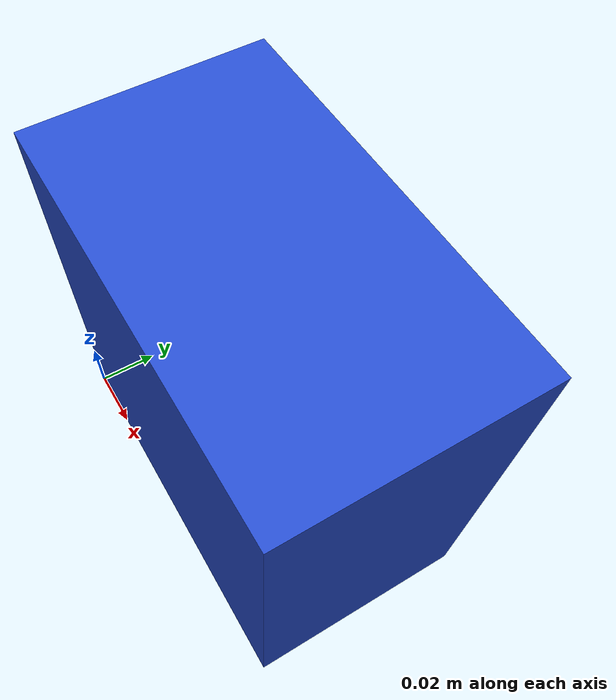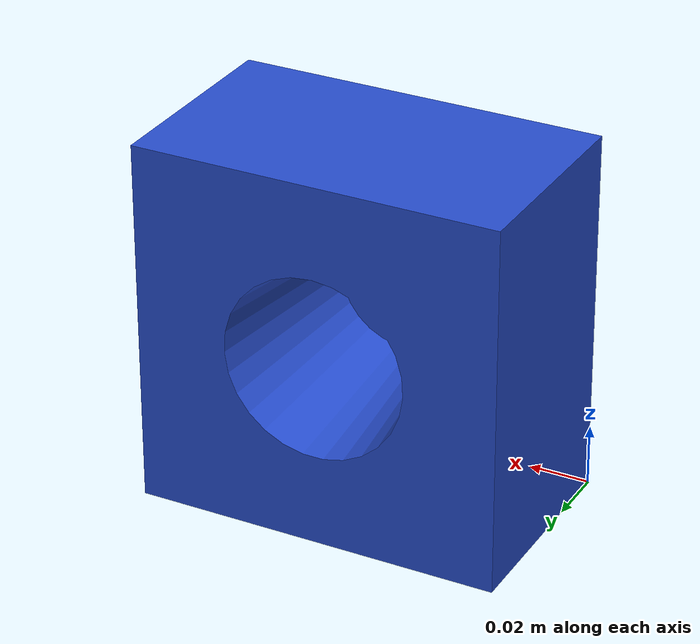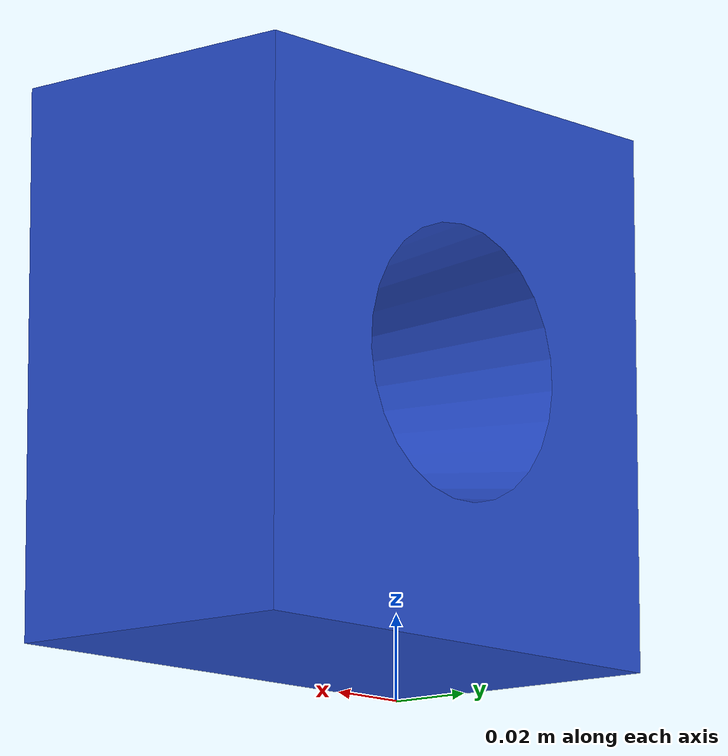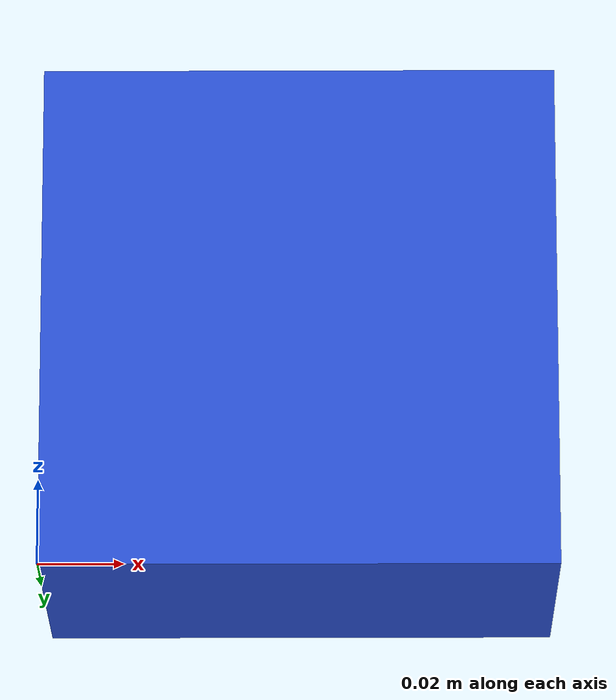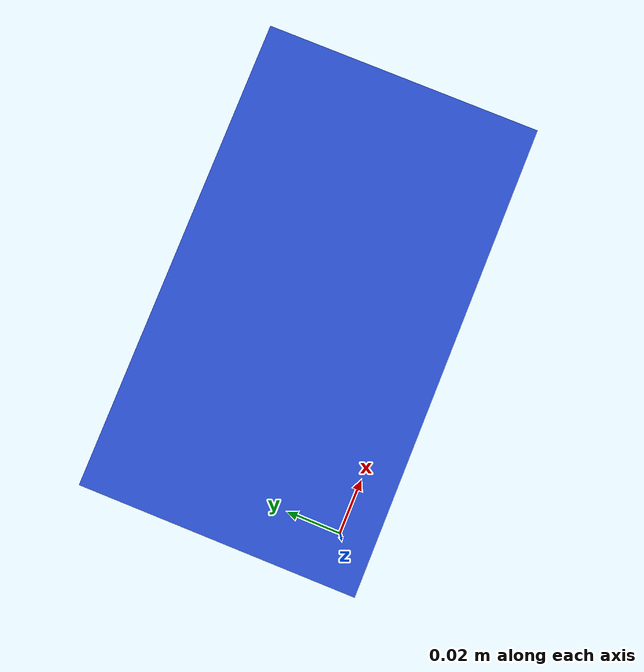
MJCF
<mujoco model="peg">
  <asset>
    <mesh file="meshes/yuanzhukong.STL" name="yuanzhukong_mesh"  scale="0.002 0.002 0.002"/>
    <texture file="../textures/blue-wood.png" name="blue-wood" />
    <material name="bmetal"  reflectance="1.0" shininess="1.0" specular="1.0" texrepeat="1 1" texture="blue-wood" texuniform="true"/>

  </asset>
  <worldbody>
    <body>
      <body name="object">
        <geom pos="0 0 0" mesh="yuanzhukong_mesh" type="mesh" solimp="0.998 0.998 0.001" solref="0.02 1" density="100" friction="0.95 0.3 0.1" material="bmetal"  group="0" condim="4"/>
      </body>
      <site rgba="0 0 0 0" size="0.005" pos="0 0 -0.082" name="bottom_site"/>
      <site rgba="0 0 0 0" size="0.005" pos="0 0 0.075" name="top_site"/>
      <site rgba="0 0 0 0" size="0.005" pos="0.0254 0.0254 0" name="horizontal_radius_site"/>
    </body>
  </worldbody>
</mujoco>
